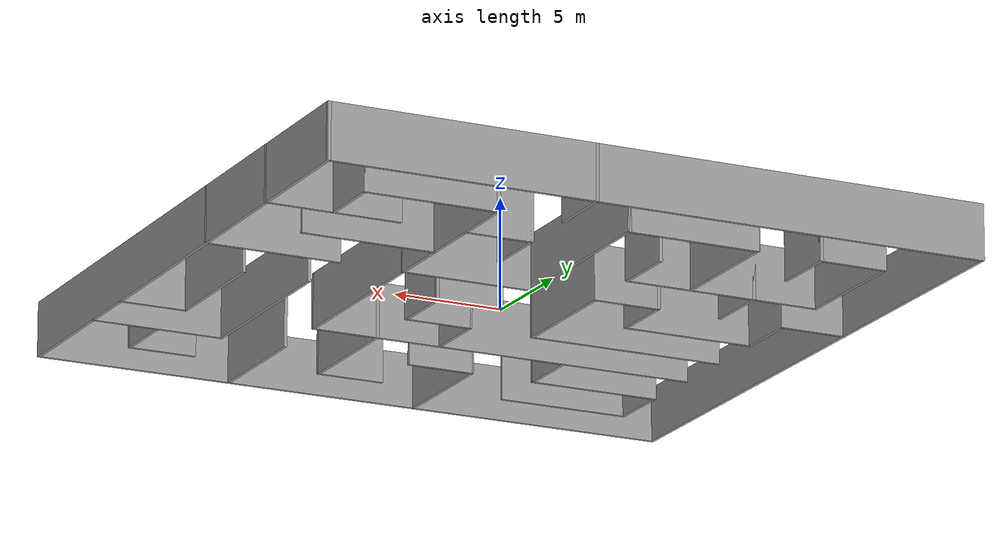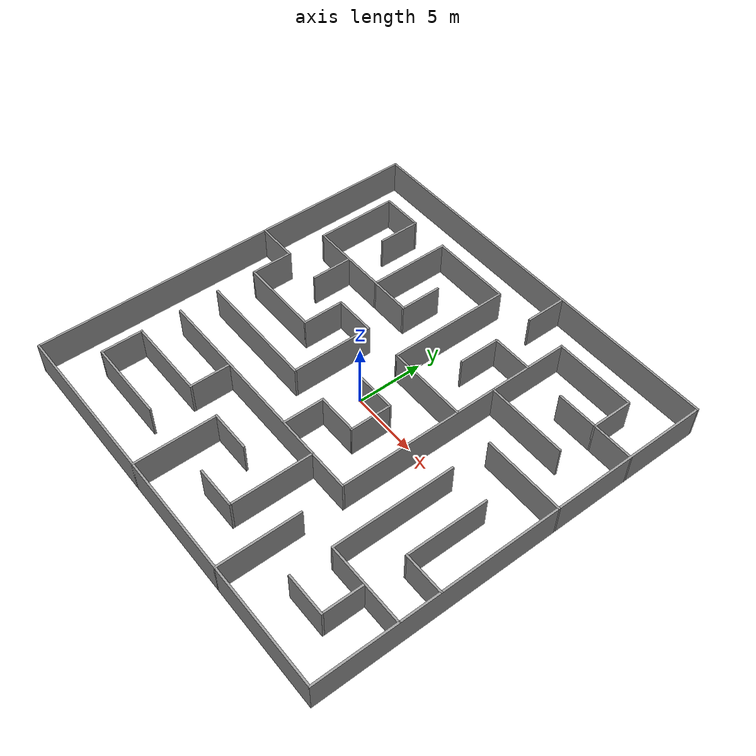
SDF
<?xml version='1.0'?>
<sdf version='1.6'>
  <model name='30x30Maze1'>
    <pose frame=''>0 0 0 0 -0 0</pose>
    <link name='Wall_0'>
      <collision name='Wall_0_Collision'>
        <geometry>
          <box>
            <size>30.15 0.15 2.5</size>
          </box>
        </geometry>
        <pose frame=''>0 0 1.25 0 -0 0</pose>
      </collision>
      <visual name='Wall_0_Visual'>
        <pose frame=''>0 0 1.25 0 -0 0</pose>
        <geometry>
          <box>
            <size>30.15 0.15 2.5</size>
          </box>
        </geometry>
        <material>
          <script>
            <uri>file://media/materials/scripts/gazebo.material</uri>
            <name>Gazebo/Grey</name>
          </script>
          <ambient>1 1 1 1</ambient>
        </material>
        <meta>
          <layer>0</layer>
        </meta>
      </visual>
      <pose frame=''>-15 0 0 0 -0 -1.5708</pose>
    </link>
    <link name='Wall_1'>
      <collision name='Wall_1_Collision'>
        <geometry>
          <box>
            <size>30.15 0.15 2.5</size>
          </box>
        </geometry>
        <pose frame=''>0 0 1.25 0 -0 0</pose>
      </collision>
      <visual name='Wall_1_Visual'>
        <pose frame=''>0 0 1.25 0 -0 0</pose>
        <geometry>
          <box>
            <size>30.15 0.15 2.5</size>
          </box>
        </geometry>
        <material>
          <script>
            <uri>file://media/materials/scripts/gazebo.material</uri>
            <name>Gazebo/Grey</name>
          </script>
          <ambient>1 1 1 1</ambient>
        </material>
        <meta>
          <layer>0</layer>
        </meta>
      </visual>
      <pose frame=''>0 -15 0 0 -0 0</pose>
    </link>
    <link name='Wall_10'>
      <collision name='Wall_10_Collision'>
        <geometry>
          <box>
            <size>3.15 0.15 2.5</size>
          </box>
        </geometry>
        <pose frame=''>0 0 1.25 0 -0 0</pose>
      </collision>
      <visual name='Wall_10_Visual'>
        <pose frame=''>0 0 1.25 0 -0 0</pose>
        <geometry>
          <box>
            <size>3.15 0.15 2.5</size>
          </box>
        </geometry>
        <material>
          <script>
            <uri>file://media/materials/scripts/gazebo.material</uri>
            <name>Gazebo/Grey</name>
          </script>
          <ambient>1 1 1 1</ambient>
        </material>
        <meta>
          <layer>0</layer>
        </meta>
      </visual>
      <pose frame=''>-4.5 3 0 0 -0 0</pose>
    </link>
    <link name='Wall_11'>
      <collision name='Wall_11_Collision'>
        <geometry>
          <box>
            <size>6.15 0.15 2.5</size>
          </box>
        </geometry>
        <pose frame=''>0 0 1.25 0 -0 0</pose>
      </collision>
      <visual name='Wall_11_Visual'>
        <pose frame=''>0 0 1.25 0 -0 0</pose>
        <geometry>
          <box>
            <size>6.15 0.15 2.5</size>
          </box>
        </geometry>
        <material>
          <script>
            <uri>file://media/materials/scripts/gazebo.material</uri>
            <name>Gazebo/Grey</name>
          </script>
          <ambient>1 1 1 1</ambient>
        </material>
        <meta>
          <layer>0</layer>
        </meta>
      </visual>
      <pose frame=''>-3 0 0 0 -0 -1.5708</pose>
    </link>
    <link name='Wall_12'>
      <collision name='Wall_12_Collision'>
        <geometry>
          <box>
            <size>9.15 0.15 2.5</size>
          </box>
        </geometry>
        <pose frame=''>0 0 1.25 0 -0 0</pose>
      </collision>
      <visual name='Wall_12_Visual'>
        <pose frame=''>0 0 1.25 0 -0 0</pose>
        <geometry>
          <box>
            <size>9.15 0.15 2.5</size>
          </box>
        </geometry>
        <material>
          <script>
            <uri>file://media/materials/scripts/gazebo.material</uri>
            <name>Gazebo/Grey</name>
          </script>
          <ambient>1 1 1 1</ambient>
        </material>
        <meta>
          <layer>0</layer>
        </meta>
      </visual>
      <pose frame=''>-7.5 -3 0 0 -0 3.14159</pose>
    </link>
    <link name='Wall_14'>
      <collision name='Wall_14_Collision'>
        <geometry>
          <box>
            <size>3.15 0.15 2.5</size>
          </box>
        </geometry>
        <pose frame=''>0 0 1.25 0 -0 0</pose>
      </collision>
      <visual name='Wall_14_Visual'>
        <pose frame=''>0 0 1.25 0 -0 0</pose>
        <geometry>
          <box>
            <size>3.15 0.15 2.5</size>
          </box>
        </geometry>
        <material>
          <script>
            <uri>file://media/materials/scripts/gazebo.material</uri>
            <name>Gazebo/Grey</name>
          </script>
          <ambient>1 1 1 1</ambient>
        </material>
        <meta>
          <layer>0</layer>
        </meta>
      </visual>
      <pose frame=''>-9 10.5 0 0 -0 1.5708</pose>
    </link>
    <link name='Wall_16'>
      <collision name='Wall_16_Collision'>
        <geometry>
          <box>
            <size>3.15 0.15 2.5</size>
          </box>
        </geometry>
        <pose frame=''>0 0 1.25 0 -0 0</pose>
      </collision>
      <visual name='Wall_16_Visual'>
        <pose frame=''>0 0 1.25 0 -0 0</pose>
        <geometry>
          <box>
            <size>3.15 0.15 2.5</size>
          </box>
        </geometry>
        <material>
          <script>
            <uri>file://media/materials/scripts/gazebo.material</uri>
            <name>Gazebo/Grey</name>
          </script>
          <ambient>1 1 1 1</ambient>
        </material>
        <meta>
          <layer>0</layer>
        </meta>
      </visual>
      <pose frame=''>-10.5 12 0 0 -0 3.14159</pose>
    </link>
    <link name='Wall_18'>
      <collision name='Wall_18_Collision'>
        <geometry>
          <box>
            <size>6.15 0.15 2.5</size>
          </box>
        </geometry>
        <pose frame=''>0 0 1.25 0 -0 0</pose>
      </collision>
      <visual name='Wall_18_Visual'>
        <pose frame=''>0 0 1.25 0 -0 0</pose>
        <geometry>
          <box>
            <size>6.15 0.15 2.5</size>
          </box>
        </geometry>
        <material>
          <script>
            <uri>file://media/materials/scripts/gazebo.material</uri>
            <name>Gazebo/Grey</name>
          </script>
          <ambient>1 1 1 1</ambient>
        </material>
        <meta>
          <layer>0</layer>
        </meta>
      </visual>
      <pose frame=''>-12 9 0 0 -0 -1.5708</pose>
    </link>
    <link name='Wall_2'>
      <collision name='Wall_2_Collision'>
        <geometry>
          <box>
            <size>30.15 0.15 2.5</size>
          </box>
        </geometry>
        <pose frame=''>0 0 1.25 0 -0 0</pose>
      </collision>
      <visual name='Wall_2_Visual'>
        <pose frame=''>0 0 1.25 0 -0 0</pose>
        <geometry>
          <box>
            <size>30.15 0.15 2.5</size>
          </box>
        </geometry>
        <material>
          <script>
            <uri>file://media/materials/scripts/gazebo.material</uri>
            <name>Gazebo/Grey</name>
          </script>
          <ambient>1 1 1 1</ambient>
        </material>
        <meta>
          <layer>0</layer>
        </meta>
      </visual>
      <pose frame=''>15 0 0 0 -0 1.5708</pose>
    </link>
    <link name='Wall_20'>
      <collision name='Wall_20_Collision'>
        <geometry>
          <box>
            <size>9.15 0.15 2.5</size>
          </box>
        </geometry>
        <pose frame=''>0 0 1.25 0 -0 0</pose>
      </collision>
      <visual name='Wall_20_Visual'>
        <pose frame=''>0 0 1.25 0 -0 0</pose>
        <geometry>
          <box>
            <size>9.15 0.15 2.5</size>
          </box>
        </geometry>
        <material>
          <script>
            <uri>file://media/materials/scripts/gazebo.material</uri>
            <name>Gazebo/Grey</name>
          </script>
          <ambient>1 1 1 1</ambient>
        </material>
        <meta>
          <layer>0</layer>
        </meta>
      </visual>
      <pose frame=''>-7.5 6 0 0 -0 0</pose>
    </link>
    <link name='Wall_22'>
      <collision name='Wall_22_Collision'>
        <geometry>
          <box>
            <size>3.15 0.15 2.5</size>
          </box>
        </geometry>
        <pose frame=''>0 0 1.25 0 -0 0</pose>
      </collision>
      <visual name='Wall_22_Visual'>
        <pose frame=''>0 0 1.25 0 -0 0</pose>
        <geometry>
          <box>
            <size>3.15 0.15 2.5</size>
          </box>
        </geometry>
        <material>
          <script>
            <uri>file://media/materials/scripts/gazebo.material</uri>
            <name>Gazebo/Grey</name>
          </script>
          <ambient>1 1 1 1</ambient>
        </material>
        <meta>
          <layer>0</layer>
        </meta>
      </visual>
      <pose frame=''>-3 7.5 0 0 -0 1.5708</pose>
    </link>
    <link name='Wall_24'>
      <collision name='Wall_24_Collision'>
        <geometry>
          <box>
            <size>3.15 0.15 2.5</size>
          </box>
        </geometry>
        <pose frame=''>0 0 1.25 0 -0 0</pose>
      </collision>
      <visual name='Wall_24_Visual'>
        <pose frame=''>0 0 1.25 0 -0 0</pose>
        <geometry>
          <box>
            <size>3.15 0.15 2.5</size>
          </box>
        </geometry>
        <material>
          <script>
            <uri>file://media/materials/scripts/gazebo.material</uri>
            <name>Gazebo/Grey</name>
          </script>
          <ambient>1 1 1 1</ambient>
        </material>
        <meta>
          <layer>0</layer>
        </meta>
      </visual>
      <pose frame=''>-9 4.5 0 0 -0 -1.5708</pose>
    </link>
    <link name='Wall_26'>
      <collision name='Wall_26_Collision'>
        <geometry>
          <box>
            <size>6.15 0.15 2.5</size>
          </box>
        </geometry>
        <pose frame=''>0 0 1.25 0 -0 0</pose>
      </collision>
      <visual name='Wall_26_Visual'>
        <pose frame=''>0 0 1.25 0 -0 0</pose>
        <geometry>
          <box>
            <size>6.15 0.15 2.5</size>
          </box>
        </geometry>
        <material>
          <script>
            <uri>file://media/materials/scripts/gazebo.material</uri>
            <name>Gazebo/Grey</name>
          </script>
          <ambient>1 1 1 1</ambient>
        </material>
        <meta>
          <layer>0</layer>
        </meta>
      </visual>
      <pose frame=''>-6 9 0 0 -0 1.5708</pose>
    </link>
    <link name='Wall_28'>
      <collision name='Wall_28_Collision'>
        <geometry>
          <box>
            <size>6.15 0.15 2.5</size>
          </box>
        </geometry>
        <pose frame=''>0 0 1.25 0 -0 0</pose>
      </collision>
      <visual name='Wall_28_Visual'>
        <pose frame=''>0 0 1.25 0 -0 0</pose>
        <geometry>
          <box>
            <size>6.15 0.15 2.5</size>
          </box>
        </geometry>
        <material>
          <script>
            <uri>file://media/materials/scripts/gazebo.material</uri>
            <name>Gazebo/Grey</name>
          </script>
          <ambient>1 1 1 1</ambient>
        </material>
        <meta>
          <layer>0</layer>
        </meta>
      </visual>
      <pose frame=''>-3 12 0 0 -0 0</pose>
    </link>
    <link name='Wall_29'>
      <collision name='Wall_29_Collision'>
        <geometry>
          <box>
            <size>9.15 0.15 2.5</size>
          </box>
        </geometry>
        <pose frame=''>0 0 1.25 0 -0 0</pose>
      </collision>
      <visual name='Wall_29_Visual'>
        <pose frame=''>0 0 1.25 0 -0 0</pose>
        <geometry>
          <box>
            <size>9.15 0.15 2.5</size>
          </box>
        </geometry>
        <material>
          <script>
            <uri>file://media/materials/scripts/gazebo.material</uri>
            <name>Gazebo/Grey</name>
          </script>
          <ambient>1 1 1 1</ambient>
        </material>
        <meta>
          <layer>0</layer>
        </meta>
      </visual>
      <pose frame=''>0 7.5 0 0 -0 -1.5708</pose>
    </link>
    <link name='Wall_3'>
      <collision name='Wall_3_Collision'>
        <geometry>
          <box>
            <size>30.15 0.15 2.5</size>
          </box>
        </geometry>
        <pose frame=''>0 0 1.25 0 -0 0</pose>
      </collision>
      <visual name='Wall_3_Visual'>
        <pose frame=''>0 0 1.25 0 -0 0</pose>
        <geometry>
          <box>
            <size>30.15 0.15 2.5</size>
          </box>
        </geometry>
        <material>
          <script>
            <uri>file://media/materials/scripts/gazebo.material</uri>
            <name>Gazebo/Grey</name>
          </script>
          <ambient>1 1 1 1</ambient>
        </material>
        <meta>
          <layer>0</layer>
        </meta>
      </visual>
      <pose frame=''>0 15 0 0 -0 3.14159</pose>
    </link>
    <link name='Wall_31'>
      <collision name='Wall_31_Collision'>
        <geometry>
          <box>
            <size>6.15 0.15 2.5</size>
          </box>
        </geometry>
        <pose frame=''>0 0 1.25 0 -0 0</pose>
      </collision>
      <visual name='Wall_31_Visual'>
        <pose frame=''>0 0 1.25 0 -0 0</pose>
        <geometry>
          <box>
            <size>6.15 0.15 2.5</size>
          </box>
        </geometry>
        <material>
          <script>
            <uri>file://media/materials/scripts/gazebo.material</uri>
            <name>Gazebo/Grey</name>
          </script>
          <ambient>1 1 1 1</ambient>
        </material>
        <meta>
          <layer>0</layer>
        </meta>
      </visual>
      <pose frame=''>3 3 0 0 -0 0</pose>
    </link>
    <link name='Wall_33'>
      <collision name='Wall_33_Collision'>
        <geometry>
          <box>
            <size>3.15 0.15 2.5</size>
          </box>
        </geometry>
        <pose frame=''>0 0 1.25 0 -0 0</pose>
      </collision>
      <visual name='Wall_33_Visual'>
        <pose frame=''>0 0 1.25 0 -0 0</pose>
        <geometry>
          <box>
            <size>3.15 0.15 2.5</size>
          </box>
        </geometry>
        <material>
          <script>
            <uri>file://media/materials/scripts/gazebo.material</uri>
            <name>Gazebo/Grey</name>
          </script>
          <ambient>1 1 1 1</ambient>
        </material>
        <meta>
          <layer>0</layer>
        </meta>
      </visual>
      <pose frame=''>3 13.5 0 0 -0 -1.5708</pose>
    </link>
    <link name='Wall_35'>
      <collision name='Wall_35_Collision'>
        <geometry>
          <box>
            <size>3.15 0.15 2.5</size>
          </box>
        </geometry>
        <pose frame=''>0 0 1.25 0 -0 0</pose>
      </collision>
      <visual name='Wall_35_Visual'>
        <pose frame=''>0 0 1.25 0 -0 0</pose>
        <geometry>
          <box>
            <size>3.15 0.15 2.5</size>
          </box>
        </geometry>
        <material>
          <script>
            <uri>file://media/materials/scripts/gazebo.material</uri>
            <name>Gazebo/Grey</name>
          </script>
          <ambient>1 1 1 1</ambient>
        </material>
        <meta>
          <layer>0</layer>
        </meta>
      </visual>
      <pose frame=''>3 7.5 0 0 -0 -1.5708</pose>
    </link>
    <link name='Wall_37'>
      <collision name='Wall_37_Collision'>
        <geometry>
          <box>
            <size>3.15 0.15 2.5</size>
          </box>
        </geometry>
        <pose frame=''>0 0 1.25 0 -0 0</pose>
      </collision>
      <visual name='Wall_37_Visual'>
        <pose frame=''>0 0 1.25 0 -0 0</pose>
        <geometry>
          <box>
            <size>3.15 0.15 2.5</size>
          </box>
        </geometry>
        <material>
          <script>
            <uri>file://media/materials/scripts/gazebo.material</uri>
            <name>Gazebo/Grey</name>
          </script>
          <ambient>1 1 1 1</ambient>
        </material>
        <meta>
          <layer>0</layer>
        </meta>
      </visual>
      <pose frame=''>4.5 9 0 0 -0 0</pose>
    </link>
    <link name='Wall_39'>
      <collision name='Wall_39_Collision'>
        <geometry>
          <box>
            <size>18.15 0.15 2.5</size>
          </box>
        </geometry>
        <pose frame=''>0 0 1.25 0 -0 0</pose>
      </collision>
      <visual name='Wall_39_Visual'>
        <pose frame=''>0 0 1.25 0 -0 0</pose>
        <geometry>
          <box>
            <size>18.15 0.15 2.5</size>
          </box>
        </geometry>
        <material>
          <script>
            <uri>file://media/materials/scripts/gazebo.material</uri>
            <name>Gazebo/Grey</name>
          </script>
          <ambient>1 1 1 1</ambient>
        </material>
        <meta>
          <layer>0</layer>
        </meta>
      </visual>
      <pose frame=''>6 3 0 0 -0 -1.5708</pose>
    </link>
    <link name='Wall_41'>
      <collision name='Wall_41_Collision'>
        <geometry>
          <box>
            <size>6.15 0.15 2.5</size>
          </box>
        </geometry>
        <pose frame=''>0 0 1.25 0 -0 0</pose>
      </collision>
      <visual name='Wall_41_Visual'>
        <pose frame=''>0 0 1.25 0 -0 0</pose>
        <geometry>
          <box>
            <size>6.15 0.15 2.5</size>
          </box>
        </geometry>
        <material>
          <script>
            <uri>file://media/materials/scripts/gazebo.material</uri>
            <name>Gazebo/Grey</name>
          </script>
          <ambient>1 1 1 1</ambient>
        </material>
        <meta>
          <layer>0</layer>
        </meta>
      </visual>
      <pose frame=''>9 12 0 0 -0 0</pose>
    </link>
    <link name='Wall_42'>
      <collision name='Wall_42_Collision'>
        <geometry>
          <box>
            <size>3.15 0.15 2.5</size>
          </box>
        </geometry>
        <pose frame=''>0 0 1.25 0 -0 0</pose>
      </collision>
      <visual name='Wall_42_Visual'>
        <pose frame=''>0 0 1.25 0 -0 0</pose>
        <geometry>
          <box>
            <size>3.15 0.15 2.5</size>
          </box>
        </geometry>
        <material>
          <script>
            <uri>file://media/materials/scripts/gazebo.material</uri>
            <name>Gazebo/Grey</name>
          </script>
          <ambient>1 1 1 1</ambient>
        </material>
        <meta>
          <layer>0</layer>
        </meta>
      </visual>
      <pose frame=''>12 10.5 0 0 -0 -1.5708</pose>
    </link>
    <link name='Wall_44'>
      <collision name='Wall_44_Collision'>
        <geometry>
          <box>
            <size>6.15 0.15 2.5</size>
          </box>
        </geometry>
        <pose frame=''>0 0 1.25 0 -0 0</pose>
      </collision>
      <visual name='Wall_44_Visual'>
        <pose frame=''>0 0 1.25 0 -0 0</pose>
        <geometry>
          <box>
            <size>6.15 0.15 2.5</size>
          </box>
        </geometry>
        <material>
          <script>
            <uri>file://media/materials/scripts/gazebo.material</uri>
            <name>Gazebo/Grey</name>
          </script>
          <ambient>1 1 1 1</ambient>
        </material>
        <meta>
          <layer>0</layer>
        </meta>
      </visual>
      <pose frame=''>12 9 0 0 -0 3.14159</pose>
    </link>
    <link name='Wall_46'>
      <collision name='Wall_46_Collision'>
        <geometry>
          <box>
            <size>6.15 0.15 2.5</size>
          </box>
        </geometry>
        <pose frame=''>0 0 1.25 0 -0 0</pose>
      </collision>
      <visual name='Wall_46_Visual'>
        <pose frame=''>0 0 1.25 0 -0 0</pose>
        <geometry>
          <box>
            <size>6.15 0.15 2.5</size>
          </box>
        </geometry>
        <material>
          <script>
            <uri>file://media/materials/scripts/gazebo.material</uri>
            <name>Gazebo/Grey</name>
          </script>
          <ambient>1 1 1 1</ambient>
        </material>
        <meta>
          <layer>0</layer>
        </meta>
      </visual>
      <pose frame=''>9 6 0 0 -0 0</pose>
    </link>
    <link name='Wall_48'>
      <collision name='Wall_48_Collision'>
        <geometry>
          <box>
            <size>6.15 0.15 2.5</size>
          </box>
        </geometry>
        <pose frame=''>0 0 1.25 0 -0 0</pose>
      </collision>
      <visual name='Wall_48_Visual'>
        <pose frame=''>0 0 1.25 0 -0 0</pose>
        <geometry>
          <box>
            <size>6.15 0.15 2.5</size>
          </box>
        </geometry>
        <material>
          <script>
            <uri>file://media/materials/scripts/gazebo.material</uri>
            <name>Gazebo/Grey</name>
          </script>
          <ambient>1 1 1 1</ambient>
        </material>
        <meta>
          <layer>0</layer>
        </meta>
      </visual>
      <pose frame=''>12 3 0 0 -0 3.14159</pose>
    </link>
    <link name='Wall_5'>
      <collision name='Wall_5_Collision'>
        <geometry>
          <box>
            <size>3.15 0.15 2.5</size>
          </box>
        </geometry>
        <pose frame=''>0 0 1.25 0 -0 0</pose>
      </collision>
      <visual name='Wall_5_Visual'>
        <pose frame=''>0 0 1.25 0 -0 0</pose>
        <geometry>
          <box>
            <size>3.15 0.15 2.5</size>
          </box>
        </geometry>
        <material>
          <script>
            <uri>file://media/materials/scripts/gazebo.material</uri>
            <name>Gazebo/Grey</name>
          </script>
          <ambient>1 1 1 1</ambient>
        </material>
        <meta>
          <layer>0</layer>
        </meta>
      </visual>
      <pose frame=''>-13.5 3 0 0 -0 0</pose>
    </link>
    <link name='Wall_50'>
      <collision name='Wall_50_Collision'>
        <geometry>
          <box>
            <size>3.15 0.15 2.5</size>
          </box>
        </geometry>
        <pose frame=''>0 0 1.25 0 -0 0</pose>
      </collision>
      <visual name='Wall_50_Visual'>
        <pose frame=''>0 0 1.25 0 -0 0</pose>
        <geometry>
          <box>
            <size>3.15 0.15 2.5</size>
          </box>
        </geometry>
        <material>
          <script>
            <uri>file://media/materials/scripts/gazebo.material</uri>
            <name>Gazebo/Grey</name>
          </script>
          <ambient>1 1 1 1</ambient>
        </material>
        <meta>
          <layer>0</layer>
        </meta>
      </visual>
      <pose frame=''>13.5 -6 0 0 -0 3.14159</pose>
    </link>
    <link name='Wall_52'>
      <collision name='Wall_52_Collision'>
        <geometry>
          <box>
            <size>6.15 0.15 2.5</size>
          </box>
        </geometry>
        <pose frame=''>0 0 1.25 0 -0 0</pose>
      </collision>
      <visual name='Wall_52_Visual'>
        <pose frame=''>0 0 1.25 0 -0 0</pose>
        <geometry>
          <box>
            <size>6.15 0.15 2.5</size>
          </box>
        </geometry>
        <material>
          <script>
            <uri>file://media/materials/scripts/gazebo.material</uri>
            <name>Gazebo/Grey</name>
          </script>
          <ambient>1 1 1 1</ambient>
        </material>
        <meta>
          <layer>0</layer>
        </meta>
      </visual>
      <pose frame=''>12 -3 0 0 -0 1.5708</pose>
    </link>
    <link name='Wall_54'>
      <collision name='Wall_54_Collision'>
        <geometry>
          <box>
            <size>6.15 0.15 2.5</size>
          </box>
        </geometry>
        <pose frame=''>0 0 1.25 0 -0 0</pose>
      </collision>
      <visual name='Wall_54_Visual'>
        <pose frame=''>0 0 1.25 0 -0 0</pose>
        <geometry>
          <box>
            <size>6.15 0.15 2.5</size>
          </box>
        </geometry>
        <material>
          <script>
            <uri>file://media/materials/scripts/gazebo.material</uri>
            <name>Gazebo/Grey</name>
          </script>
          <ambient>1 1 1 1</ambient>
        </material>
        <meta>
          <layer>0</layer>
        </meta>
      </visual>
      <pose frame=''>12 -9 0 0 -0 3.14159</pose>
    </link>
    <link name='Wall_55'>
      <collision name='Wall_55_Collision'>
        <geometry>
          <box>
            <size>9.15 0.15 2.5</size>
          </box>
        </geometry>
        <pose frame=''>0 0 1.25 0 -0 0</pose>
      </collision>
      <visual name='Wall_55_Visual'>
        <pose frame=''>0 0 1.25 0 -0 0</pose>
        <geometry>
          <box>
            <size>9.15 0.15 2.5</size>
          </box>
        </geometry>
        <material>
          <script>
            <uri>file://media/materials/scripts/gazebo.material</uri>
            <name>Gazebo/Grey</name>
          </script>
          <ambient>1 1 1 1</ambient>
        </material>
        <meta>
          <layer>0</layer>
        </meta>
      </visual>
      <pose frame=''>9 -4.5 0 0 -0 1.5708</pose>
    </link>
    <link name='Wall_57'>
      <collision name='Wall_57_Collision'>
        <geometry>
          <box>
            <size>3.15 0.15 2.5</size>
          </box>
        </geometry>
        <pose frame=''>0 0 1.25 0 -0 0</pose>
      </collision>
      <visual name='Wall_57_Visual'>
        <pose frame=''>0 0 1.25 0 -0 0</pose>
        <geometry>
          <box>
            <size>3.15 0.15 2.5</size>
          </box>
        </geometry>
        <material>
          <script>
            <uri>file://media/materials/scripts/gazebo.material</uri>
            <name>Gazebo/Grey</name>
          </script>
          <ambient>1 1 1 1</ambient>
        </material>
        <meta>
          <layer>0</layer>
        </meta>
      </visual>
      <pose frame=''>12 -10.5 0 0 -0 -1.5708</pose>
    </link>
    <link name='Wall_58'>
      <collision name='Wall_58_Collision'>
        <geometry>
          <box>
            <size>3.15 0.15 2.5</size>
          </box>
        </geometry>
        <pose frame=''>0 0 1.25 0 -0 0</pose>
      </collision>
      <visual name='Wall_58_Visual'>
        <pose frame=''>0 0 1.25 0 -0 0</pose>
        <geometry>
          <box>
            <size>3.15 0.15 2.5</size>
          </box>
        </geometry>
        <material>
          <script>
            <uri>file://media/materials/scripts/gazebo.material</uri>
            <name>Gazebo/Grey</name>
          </script>
          <ambient>1 1 1 1</ambient>
        </material>
        <meta>
          <layer>0</layer>
        </meta>
      </visual>
      <pose frame=''>10.5 -12 0 0 -0 3.14159</pose>
    </link>
    <link name='Wall_60'>
      <collision name='Wall_60_Collision'>
        <geometry>
          <box>
            <size>6.15 0.15 2.5</size>
          </box>
        </geometry>
        <pose frame=''>0 0 1.25 0 -0 0</pose>
      </collision>
      <visual name='Wall_60_Visual'>
        <pose frame=''>0 0 1.25 0 -0 0</pose>
        <geometry>
          <box>
            <size>6.15 0.15 2.5</size>
          </box>
        </geometry>
        <material>
          <script>
            <uri>file://media/materials/scripts/gazebo.material</uri>
            <name>Gazebo/Grey</name>
          </script>
          <ambient>1 1 1 1</ambient>
        </material>
        <meta>
          <layer>0</layer>
        </meta>
      </visual>
      <pose frame=''>6 -12 0 0 -0 1.5708</pose>
    </link>
    <link name='Wall_62'>
      <collision name='Wall_62_Collision'>
        <geometry>
          <box>
            <size>18.15 0.15 2.5</size>
          </box>
        </geometry>
        <pose frame=''>0 0 1.25 0 -0 0</pose>
      </collision>
      <visual name='Wall_62_Visual'>
        <pose frame=''>0 0 1.25 0 -0 0</pose>
        <geometry>
          <box>
            <size>18.15 0.15 2.5</size>
          </box>
        </geometry>
        <material>
          <script>
            <uri>file://media/materials/scripts/gazebo.material</uri>
            <name>Gazebo/Grey</name>
          </script>
          <ambient>1 1 1 1</ambient>
        </material>
        <meta>
          <layer>0</layer>
        </meta>
      </visual>
      <pose frame=''>-3 -6 0 0 -0 3.14159</pose>
    </link>
    <link name='Wall_64'>
      <collision name='Wall_64_Collision'>
        <geometry>
          <box>
            <size>3.15 0.15 2.5</size>
          </box>
        </geometry>
        <pose frame=''>0 0 1.25 0 -0 0</pose>
      </collision>
      <visual name='Wall_64_Visual'>
        <pose frame=''>0 0 1.25 0 -0 0</pose>
        <geometry>
          <box>
            <size>3.15 0.15 2.5</size>
          </box>
        </geometry>
        <material>
          <script>
            <uri>file://media/materials/scripts/gazebo.material</uri>
            <name>Gazebo/Grey</name>
          </script>
          <ambient>1 1 1 1</ambient>
        </material>
        <meta>
          <layer>0</layer>
        </meta>
      </visual>
      <pose frame=''>0 -4.5 0 0 -0 1.5708</pose>
    </link>
    <link name='Wall_65'>
      <collision name='Wall_65_Collision'>
        <geometry>
          <box>
            <size>3.15 0.15 2.5</size>
          </box>
        </geometry>
        <pose frame=''>0 0 1.25 0 -0 0</pose>
      </collision>
      <visual name='Wall_65_Visual'>
        <pose frame=''>0 0 1.25 0 -0 0</pose>
        <geometry>
          <box>
            <size>3.15 0.15 2.5</size>
          </box>
        </geometry>
        <material>
          <script>
            <uri>file://media/materials/scripts/gazebo.material</uri>
            <name>Gazebo/Grey</name>
          </script>
          <ambient>1 1 1 1</ambient>
        </material>
        <meta>
          <layer>0</layer>
        </meta>
      </visual>
      <pose frame=''>1.5 -3 0 0 -0 0</pose>
    </link>
    <link name='Wall_66'>
      <collision name='Wall_66_Collision'>
        <geometry>
          <box>
            <size>3.15 0.15 2.5</size>
          </box>
        </geometry>
        <pose frame=''>0 0 1.25 0 -0 0</pose>
      </collision>
      <visual name='Wall_66_Visual'>
        <pose frame=''>0 0 1.25 0 -0 0</pose>
        <geometry>
          <box>
            <size>3.15 0.15 2.5</size>
          </box>
        </geometry>
        <material>
          <script>
            <uri>file://media/materials/scripts/gazebo.material</uri>
            <name>Gazebo/Grey</name>
          </script>
          <ambient>1 1 1 1</ambient>
        </material>
        <meta>
          <layer>0</layer>
        </meta>
      </visual>
      <pose frame=''>3 -1.5 0 0 -0 1.5708</pose>
    </link>
    <link name='Wall_67'>
      <collision name='Wall_67_Collision'>
        <geometry>
          <box>
            <size>3.15 0.15 2.5</size>
          </box>
        </geometry>
        <pose frame=''>0 0 1.25 0 -0 0</pose>
      </collision>
      <visual name='Wall_67_Visual'>
        <pose frame=''>0 0 1.25 0 -0 0</pose>
        <geometry>
          <box>
            <size>3.15 0.15 2.5</size>
          </box>
        </geometry>
        <material>
          <script>
            <uri>file://media/materials/scripts/gazebo.material</uri>
            <name>Gazebo/Grey</name>
          </script>
          <ambient>1 1 1 1</ambient>
        </material>
        <meta>
          <layer>0</layer>
        </meta>
      </visual>
      <pose frame=''>1.5 0 0 0 -0 3.14159</pose>
    </link>
    <link name='Wall_69'>
      <collision name='Wall_69_Collision'>
        <geometry>
          <box>
            <size>3.15 0.15 2.5</size>
          </box>
        </geometry>
        <pose frame=''>0 0 1.25 0 -0 0</pose>
      </collision>
      <visual name='Wall_69_Visual'>
        <pose frame=''>0 0 1.25 0 -0 0</pose>
        <geometry>
          <box>
            <size>3.15 0.15 2.5</size>
          </box>
        </geometry>
        <material>
          <script>
            <uri>file://media/materials/scripts/gazebo.material</uri>
            <name>Gazebo/Grey</name>
          </script>
          <ambient>1 1 1 1</ambient>
        </material>
        <meta>
          <layer>0</layer>
        </meta>
      </visual>
      <pose frame=''>-6 -7.5 0 0 -0 -1.5708</pose>
    </link>
    <link name='Wall_7'>
      <collision name='Wall_7_Collision'>
        <geometry>
          <box>
            <size>3.15 0.15 2.5</size>
          </box>
        </geometry>
        <pose frame=''>0 0 1.25 0 -0 0</pose>
      </collision>
      <visual name='Wall_7_Visual'>
        <pose frame=''>0 0 1.25 0 -0 0</pose>
        <geometry>
          <box>
            <size>3.15 0.15 2.5</size>
          </box>
        </geometry>
        <material>
          <script>
            <uri>file://media/materials/scripts/gazebo.material</uri>
            <name>Gazebo/Grey</name>
          </script>
          <ambient>1 1 1 1</ambient>
        </material>
        <meta>
          <layer>0</layer>
        </meta>
      </visual>
      <pose frame=''>-12 1.5 0 0 -0 -1.5708</pose>
    </link>
    <link name='Wall_70'>
      <collision name='Wall_70_Collision'>
        <geometry>
          <box>
            <size>6.15 0.15 2.5</size>
          </box>
        </geometry>
        <pose frame=''>0 0 1.25 0 -0 0</pose>
      </collision>
      <visual name='Wall_70_Visual'>
        <pose frame=''>0 0 1.25 0 -0 0</pose>
        <geometry>
          <box>
            <size>6.15 0.15 2.5</size>
          </box>
        </geometry>
        <material>
          <script>
            <uri>file://media/materials/scripts/gazebo.material</uri>
            <name>Gazebo/Grey</name>
          </script>
          <ambient>1 1 1 1</ambient>
        </material>
        <meta>
          <layer>0</layer>
        </meta>
      </visual>
      <pose frame=''>-9 -9 0 0 -0 3.14159</pose>
    </link>
    <link name='Wall_71'>
      <collision name='Wall_71_Collision'>
        <geometry>
          <box>
            <size>3.15 0.15 2.5</size>
          </box>
        </geometry>
        <pose frame=''>0 0 1.25 0 -0 0</pose>
      </collision>
      <visual name='Wall_71_Visual'>
        <pose frame=''>0 0 1.25 0 -0 0</pose>
        <geometry>
          <box>
            <size>3.15 0.15 2.5</size>
          </box>
        </geometry>
        <material>
          <script>
            <uri>file://media/materials/scripts/gazebo.material</uri>
            <name>Gazebo/Grey</name>
          </script>
          <ambient>1 1 1 1</ambient>
        </material>
        <meta>
          <layer>0</layer>
        </meta>
      </visual>
      <pose frame=''>-12 -10.5 0 0 -0 -1.5708</pose>
    </link>
    <link name='Wall_72'>
      <collision name='Wall_72_Collision'>
        <geometry>
          <box>
            <size>6.15 0.15 2.5</size>
          </box>
        </geometry>
        <pose frame=''>0 0 1.25 0 -0 0</pose>
      </collision>
      <visual name='Wall_72_Visual'>
        <pose frame=''>0 0 1.25 0 -0 0</pose>
        <geometry>
          <box>
            <size>6.15 0.15 2.5</size>
          </box>
        </geometry>
        <material>
          <script>
            <uri>file://media/materials/scripts/gazebo.material</uri>
            <name>Gazebo/Grey</name>
          </script>
          <ambient>1 1 1 1</ambient>
        </material>
        <meta>
          <layer>0</layer>
        </meta>
      </visual>
      <pose frame=''>-9 -12 0 0 -0 0</pose>
    </link>
    <link name='Wall_74'>
      <collision name='Wall_74_Collision'>
        <geometry>
          <box>
            <size>6.15 0.15 2.5</size>
          </box>
        </geometry>
        <pose frame=''>0 0 1.25 0 -0 0</pose>
      </collision>
      <visual name='Wall_74_Visual'>
        <pose frame=''>0 0 1.25 0 -0 0</pose>
        <geometry>
          <box>
            <size>6.15 0.15 2.5</size>
          </box>
        </geometry>
        <material>
          <script>
            <uri>file://media/materials/scripts/gazebo.material</uri>
            <name>Gazebo/Grey</name>
          </script>
          <ambient>1 1 1 1</ambient>
        </material>
        <meta>
          <layer>0</layer>
        </meta>
      </visual>
      <pose frame=''>-3 -12 0 0 -0 1.5708</pose>
    </link>
    <link name='Wall_75'>
      <collision name='Wall_75_Collision'>
        <geometry>
          <box>
            <size>3.15 0.15 2.5</size>
          </box>
        </geometry>
        <pose frame=''>0 0 1.25 0 -0 0</pose>
      </collision>
      <visual name='Wall_75_Visual'>
        <pose frame=''>0 0 1.25 0 -0 0</pose>
        <geometry>
          <box>
            <size>3.15 0.15 2.5</size>
          </box>
        </geometry>
        <material>
          <script>
            <uri>file://media/materials/scripts/gazebo.material</uri>
            <name>Gazebo/Grey</name>
          </script>
          <ambient>1 1 1 1</ambient>
        </material>
        <meta>
          <layer>0</layer>
        </meta>
      </visual>
      <pose frame=''>-1.5 -9 0 0 -0 0</pose>
    </link>
    <link name='Wall_77'>
      <collision name='Wall_77_Collision'>
        <geometry>
          <box>
            <size>6.15 0.15 2.5</size>
          </box>
        </geometry>
        <pose frame=''>0 0 1.25 0 -0 0</pose>
      </collision>
      <visual name='Wall_77_Visual'>
        <pose frame=''>0 0 1.25 0 -0 0</pose>
        <geometry>
          <box>
            <size>6.15 0.15 2.5</size>
          </box>
        </geometry>
        <material>
          <script>
            <uri>file://media/materials/scripts/gazebo.material</uri>
            <name>Gazebo/Grey</name>
          </script>
          <ambient>1 1 1 1</ambient>
        </material>
        <meta>
          <layer>0</layer>
        </meta>
      </visual>
      <pose frame=''>3 -9 0 0 -0 -1.5708</pose>
    </link>
    <link name='Wall_78'>
      <collision name='Wall_78_Collision'>
        <geometry>
          <box>
            <size>3.15 0.15 2.5</size>
          </box>
        </geometry>
        <pose frame=''>0 0 1.25 0 -0 0</pose>
      </collision>
      <visual name='Wall_78_Visual'>
        <pose frame=''>0 0 1.25 0 -0 0</pose>
        <geometry>
          <box>
            <size>3.15 0.15 2.5</size>
          </box>
        </geometry>
        <material>
          <script>
            <uri>file://media/materials/scripts/gazebo.material</uri>
            <name>Gazebo/Grey</name>
          </script>
          <ambient>1 1 1 1</ambient>
        </material>
        <meta>
          <layer>0</layer>
        </meta>
      </visual>
      <pose frame=''>1.5 -12 0 0 -0 3.14159</pose>
    </link>
    <link name='Wall_8'>
      <collision name='Wall_8_Collision'>
        <geometry>
          <box>
            <size>6.15 0.15 2.5</size>
          </box>
        </geometry>
        <pose frame=''>0 0 1.25 0 -0 0</pose>
      </collision>
      <visual name='Wall_8_Visual'>
        <pose frame=''>0 0 1.25 0 -0 0</pose>
        <geometry>
          <box>
            <size>6.15 0.15 2.5</size>
          </box>
        </geometry>
        <material>
          <script>
            <uri>file://media/materials/scripts/gazebo.material</uri>
            <name>Gazebo/Grey</name>
          </script>
          <ambient>1 1 1 1</ambient>
        </material>
        <meta>
          <layer>0</layer>
        </meta>
      </visual>
      <pose frame=''>-9 0 0 0 -0 0</pose>
    </link>
    <link name='Wall_9'>
      <collision name='Wall_9_Collision'>
        <geometry>
          <box>
            <size>3.15 0.15 2.5</size>
          </box>
        </geometry>
        <pose frame=''>0 0 1.25 0 -0 0</pose>
      </collision>
      <visual name='Wall_9_Visual'>
        <pose frame=''>0 0 1.25 0 -0 0</pose>
        <geometry>
          <box>
            <size>3.15 0.15 2.5</size>
          </box>
        </geometry>
        <material>
          <script>
            <uri>file://media/materials/scripts/gazebo.material</uri>
            <name>Gazebo/Grey</name>
          </script>
          <ambient>1 1 1 1</ambient>
        </material>
        <meta>
          <layer>0</layer>
        </meta>
      </visual>
      <pose frame=''>-6 1.5 0 0 -0 1.5708</pose>
    </link>
    <static>1</static>
  </model>
</sdf>
